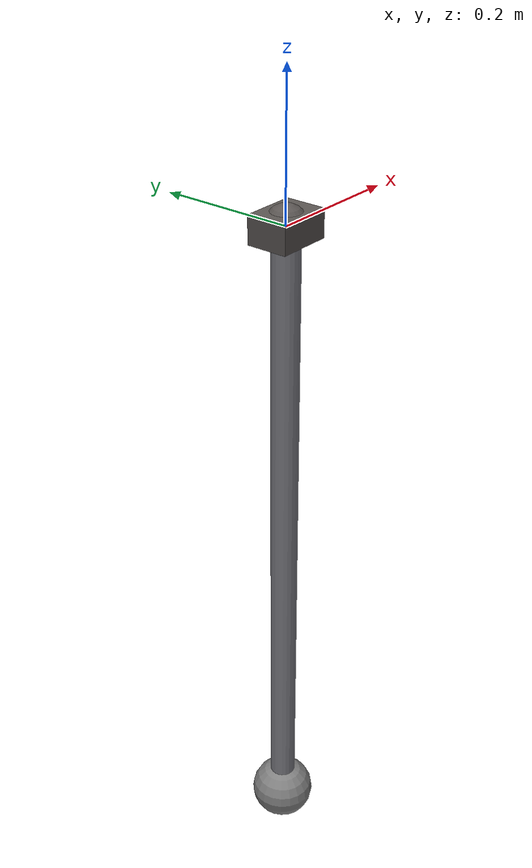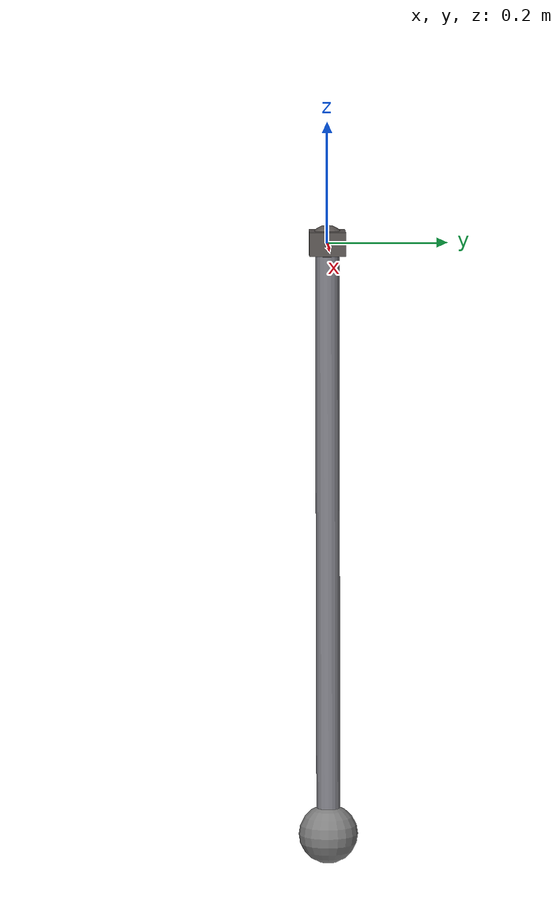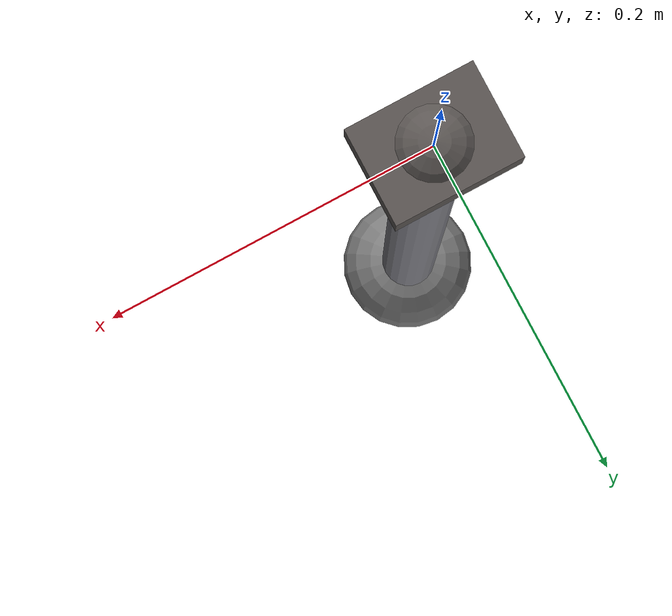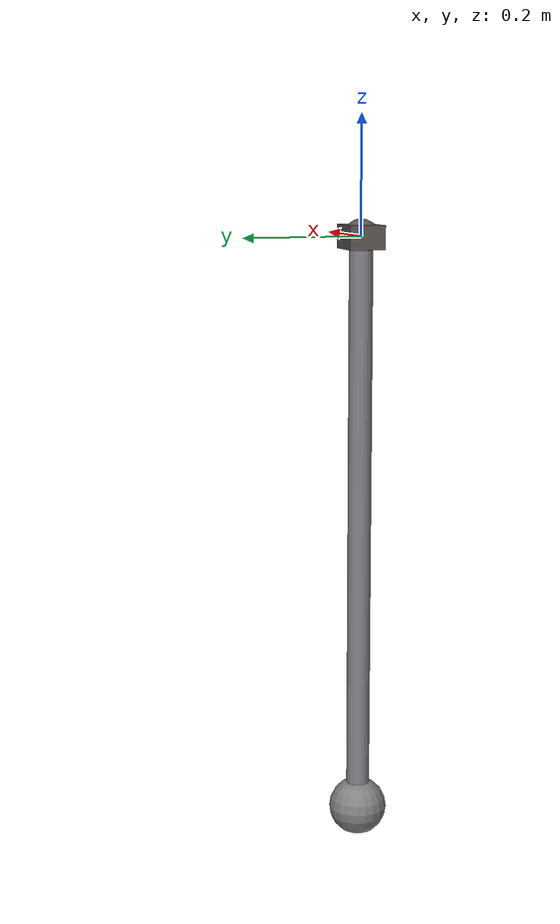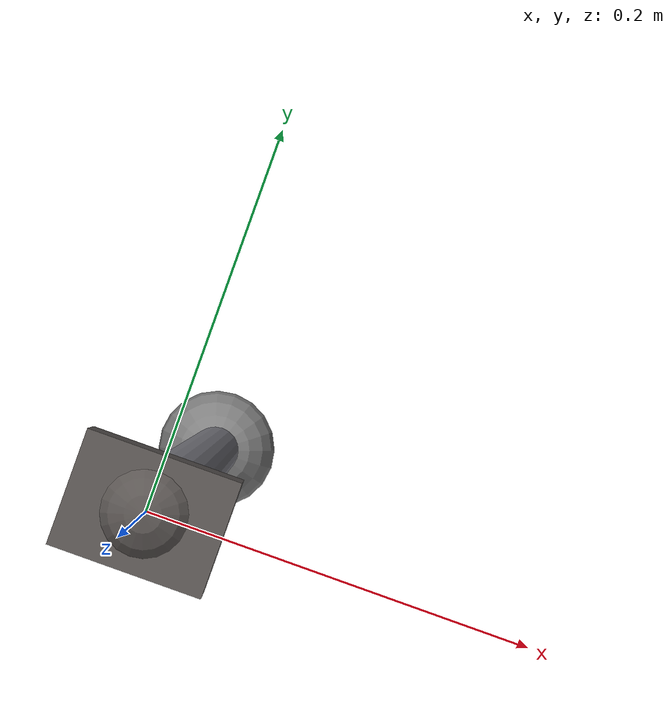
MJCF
<mujoco model="parallel-step">
  <compiler angle="radian"/>
  <option gravity="0 0 -9.81" timestep="0.002" integrator="RK4">
    <flag energy="enable" contact="disable"/>
  </option>
  <default>
    <geom contype="0" conaffinity="0"/>
  </default>
  <worldbody>
    <geom name="bracket" type="box" size="0.04 0.03 0.02"
          pos="0 0 0" rgba="0.35 0.33 0.32 1"/>
    <body name="link" pos="0 0 0">
      <joint name="hinge" type="hinge" axis="0 1 0" damping="0"/>
      <inertial pos="0 0 -0.5" mass="1.0" diaginertia="0.01 0.01 0.01"/>
      <geom name="socket" type="sphere" size="0.03"
            pos="0 0 0" rgba="0.35 0.33 0.32 1"/>
      <geom name="rod" type="capsule" size="0.02"
            fromto="0 0 0  0 0 -1.0" rgba="0.50 0.50 0.53 1"/>
      <geom name="tip" type="sphere" size="0.05"
            pos="0 0 -1.0"/>
    </body>
  </worldbody>
  <actuator>
    <motor name="torque" joint="hinge" gear="1"
           ctrllimited="true" ctrlrange="-1 1"/>
  </actuator>
</mujoco>
